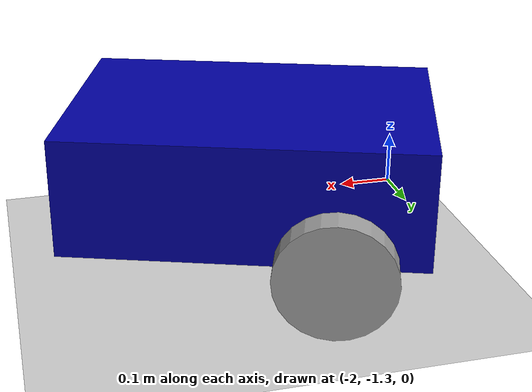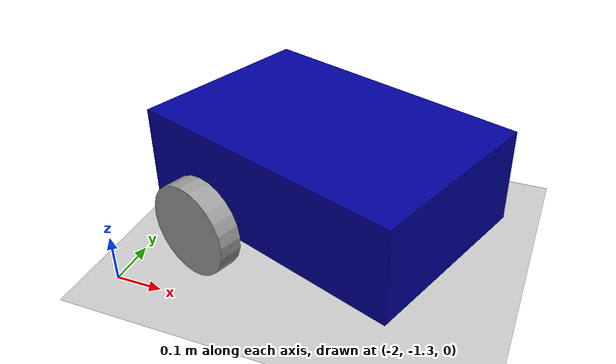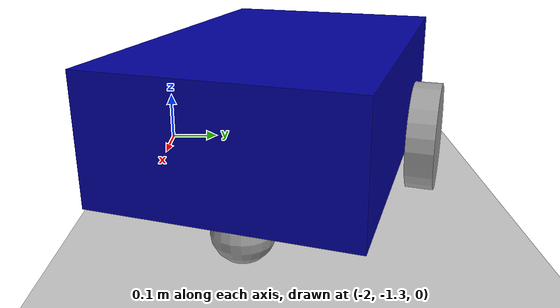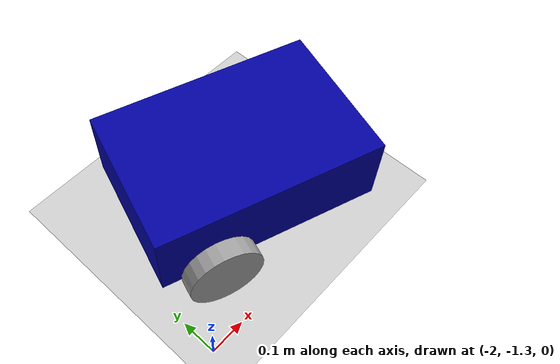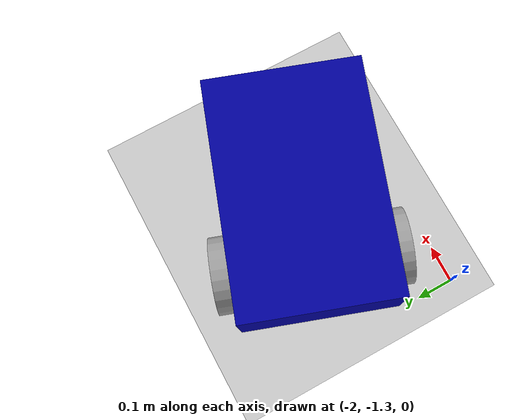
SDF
<sdf version="1.9">
 <world name="empty">
  <physics name="1ms" type="ignored">
   <max_step_size>0.001</max_step_size>
   <real_time_factor>1</real_time_factor>
   <real_time_update_rate>1000</real_time_update_rate>
  </physics>
  <plugin name="gz::sim::systems::Physics" filename="ignition-gazebo-physics-system"/>
  <plugin name="gz::sim::systems::UserCommands" filename="ignition-gazebo-user-commands-system"/>
  <plugin name="gz::sim::systems::SceneBroadcaster" filename="ignition-gazebo-scene-broadcaster-system"/>
  <plugin name="gz::sim::systems::Contact" filename="ignition-gazebo-contact-system"/>
  <gravity>0 0 -9.8</gravity>
  <magnetic_field>6e-06 2.3e-05 -4.2e-05</magnetic_field>
  <atmosphere type="adiabatic"/>
  <scene><ambient>0.4 0.4 0.4 1</ambient><background>0.7 0.7 0.7 1</background><shadows>true</shadows></scene>
  <plugin name="ignition::gazebo::systems::TriggeredPublisher" filename="libignition-gazebo-triggered-publisher-system.so">
   <input type="ignition.msgs.Int32" topic="/keyboard/keypress"><match field="data">16777235</match></input>
   <output type="ignition.msgs.Twist" topic="/cmd_vel">linear: {x: 0.5}, angular: {z: 0.0}</output>
  </plugin>
  <plugin name="ignition::gazebo::systems::TriggeredPublisher" filename="libignition-gazebo-triggered-publisher-system.so">
   <input type="ignition.msgs.Int32" topic="/keyboard/keypress"><match field="data">16777237</match></input>
   <output type="ignition.msgs.Twist" topic="/cmd_vel">linear: {x: -0.5}, angular: {z: 0.0}</output>
  </plugin>
  <plugin name="ignition::gazebo::systems::TriggeredPublisher" filename="libignition-gazebo-triggered-publisher-system.so">
   <input type="ignition.msgs.Int32" topic="/keyboard/keypress"><match field="data">16777236</match></input>
   <output type="ignition.msgs.Twist" topic="/cmd_vel">linear: {x: 0.0}, angular: {z: -0.5}</output>
  </plugin>
  <plugin name="ignition::gazebo::systems::TriggeredPublisher" filename="libignition-gazebo-triggered-publisher-system.so">
   <input type="ignition.msgs.Int32" topic="/keyboard/keypress"><match field="data">16777234</match></input>
   <output type="ignition.msgs.Twist" topic="/cmd_vel">linear: {x: 0.0}, angular: {z: 0.5}</output>
  </plugin>
  <model name="ground_plane">
   <static>true</static>
   <link name="link">
    <collision name="collision">
     <geometry><plane><normal>0 0 1</normal><size>100 100</size></plane></geometry>
    </collision>
    <visual name="visual">
     <geometry><plane><normal>0 0 1</normal><size>100 100</size></plane></geometry>
     <material>
      <ambient>0.8 0.8 0.8 1</ambient>
      <diffuse>0.8 0.8 0.8 1</diffuse>
      <specular>0.8 0.8 0.8 1</specular>
     </material>
    </visual>
    <inertial>
     <mass>1</mass>
     <inertia><ixx>1</ixx><ixy>0</ixy><ixz>0</ixz><iyy>1</iyy><iyz>0</iyz><izz>1</izz></inertia>
    </inertial>
   </link>
  </model>
  <model name="urdf_model">
   <link name="base_footprint">
    <inertial>
     <pose>0.018182 0 0.186364 0 -0 0</pose>
     <mass>5.5</mass>
     <inertia>
      <ixx>0.678894</ixx>
      <ixy>0</ixy>
      <ixz>0.0136364</ixz>
      <iyy>0.89707599999999998</iyy>
      <iyz>0</iyz>
      <izz>0.35351500000000002</izz>
     </inertia>
    </inertial>
    <collision name="base_footprint_fixed_joint_lump__base_link_collision">
     <pose>0 0 0.2 0 0 0</pose>
     <geometry><box><size>0.6 0.4 0.2</size></box></geometry>
    </collision>
    <collision name="base_footprint_fixed_joint_lump__caster_wheel_link_collision_1">
     <pose>0.2 0 0.05 0 0 0</pose>
     <geometry><sphere><radius>0.050000000000000003</radius></sphere></geometry>
     <surface><friction><ode><mu>0.10000000000000001</mu><mu2>0.10000000000000001</mu2></ode></friction></surface>
    </collision>
    <visual name="base_footprint_fixed_joint_lump__base_link_visual">
     <pose>0 0 0.2 0 0 0</pose>
     <geometry><box><size>0.6 0.4 0.2</size></box></geometry>
     <material><diffuse>0 0 0.625 1</diffuse><ambient>0 0 0.625 1</ambient></material>
    </visual>
    <visual name="base_footprint_fixed_joint_lump__caster_wheel_link_visual_1">
     <pose>0.2 0 0.05 0 0 0</pose>
     <geometry><sphere><radius>0.050000000000000003</radius></sphere></geometry>
     <material><diffuse>0.625 0.625 0.625 1</diffuse><ambient>0.625 0.625 0.625 1</ambient></material>
    </visual>
   </link>
   <joint name="base_left_wheel_joint" type="revolute">
    <parent>base_footprint</parent>
    <child>left_wheel_link</child>
    <axis>
     <xyz>0 1 0</xyz>
     <limit>
      <lower>-10000000000000000</lower>
      <upper>10000000000000000</upper>
      <effort>inf</effort>
      <velocity>inf</velocity>
      <stiffness>100000000</stiffness>
      <dissipation>1</dissipation>
     </limit>
     <dynamics>
      <spring_reference>0</spring_reference>
      <spring_stiffness>0</spring_stiffness>
      <damping>0</damping>
      <friction>0</friction>
     </dynamics>
    </axis>
   </joint>
   <link name="left_wheel_link">
    <pose>-0.15 0.225 0.1 -0 1.30027 -0</pose>
    <inertial>
     <pose>0 0 0 1.5708 -0 0</pose>
     <mass>1</mass>
     <inertia>
      <ixx>0.010833300000000001</ixx>
      <ixy>0</ixy>
      <ixz>0</ixz>
      <iyy>0.010833300000000001</iyy>
      <iyz>0</iyz>
      <izz>0.02</izz>
     </inertia>
    </inertial>
    <collision name="left_wheel_link_collision">
     <pose>0 0 0 1.570796326794896 0 0</pose>
     <geometry>
      <cylinder><length>0.050000000000000003</length><radius>0.10000000000000001</radius></cylinder>
     </geometry>
    </collision>
    <visual name="left_wheel_link_visual">
     <pose>0 0 0 1.570796326794896 0 0</pose>
     <geometry>
      <cylinder><length>0.050000000000000003</length><radius>0.10000000000000001</radius></cylinder>
     </geometry>
     <material><diffuse>0.625 0.625 0.625 1</diffuse><ambient>0.625 0.625 0.625 1</ambient></material>
    </visual>
   </link>
   <joint name="base_right_wheel_joint" type="revolute">
    <parent>base_footprint</parent>
    <child>right_wheel_link</child>
    <axis>
     <xyz>0 1 0</xyz>
     <limit>
      <lower>-10000000000000000</lower>
      <upper>10000000000000000</upper>
      <effort>inf</effort>
      <velocity>inf</velocity>
      <stiffness>100000000</stiffness>
      <dissipation>1</dissipation>
     </limit>
     <dynamics>
      <spring_reference>0</spring_reference>
      <spring_stiffness>0</spring_stiffness>
      <damping>0</damping>
      <friction>0</friction>
     </dynamics>
    </axis>
   </joint>
   <link name="right_wheel_link">
    <pose>-0.15 -0.225 0.1 0 -0.332646 0</pose>
    <inertial>
     <pose>0 0 0 1.5708 -0 0</pose>
     <mass>1</mass>
     <inertia>
      <ixx>0.010833300000000001</ixx>
      <ixy>0</ixy>
      <ixz>0</ixz>
      <iyy>0.010833300000000001</iyy>
      <iyz>0</iyz>
      <izz>0.02</izz>
     </inertia>
    </inertial>
    <collision name="right_wheel_link_collision">
     <pose>0 0 0 1.570796326794896 0 0</pose>
     <geometry>
      <cylinder><length>0.050000000000000003</length><radius>0.10000000000000001</radius></cylinder>
     </geometry>
    </collision>
    <visual name="right_wheel_link_visual">
     <pose>0 0 0 1.570796326794896 0 0</pose>
     <geometry>
      <cylinder><length>0.050000000000000003</length><radius>0.10000000000000001</radius></cylinder>
     </geometry>
     <material><diffuse>0.625 0.625 0.625 1</diffuse><ambient>0.625 0.625 0.625 1</ambient></material>
    </visual>
   </link>
   <frame name="base_caster_wheel_joint" attached_to="base_link"><pose>0.2 0 -0.05 0 -0 0</pose></frame>
   <frame name="caster_wheel_link" attached_to="base_caster_wheel_joint"/>
   <frame name="base_joint" attached_to="base_footprint"><pose>0 0 0.1 0 -0 0</pose></frame>
   <frame name="base_link" attached_to="base_joint"/>
   <pose>-1.64668 -1.04046 -0 -0 0 -0.338225</pose>
   <static>false</static>
   <plugin name="ignition::gazebo::systems::DiffDrive" filename="libignition-gazebo-diff-drive-system.so">
    <left_joint>base_left_wheel_joint</left_joint>
    <right_joint>base_right_wheel_joint</right_joint>
    <wheel_separation>0.45</wheel_separation>
    <wheel_radius>0.1</wheel_radius>
    <odom_publish_frecuency>1</odom_publish_frecuency>
    <topic>cmd_vel</topic>
   </plugin>
  </model>
  <light name="sun" type="directional">
   <pose>0 0 10 0 -0 0</pose>
   <intensity>1</intensity>
   <direction>-0.5 0.1 -0.9</direction>
   <diffuse>0.8 0.8 0.8 1</diffuse>
   <specular>0.2 0.2 0.2 1</specular>
   <attenuation>
    <range>1000</range>
    <linear>0.01</linear>
    <constant>0.90000000000000002</constant>
    <quadratic>0.001</quadratic>
   </attenuation>
   <spot><inner_angle>0</inner_angle><outer_angle>0</outer_angle><falloff>0</falloff></spot>
  </light>
 </world>
</sdf>
